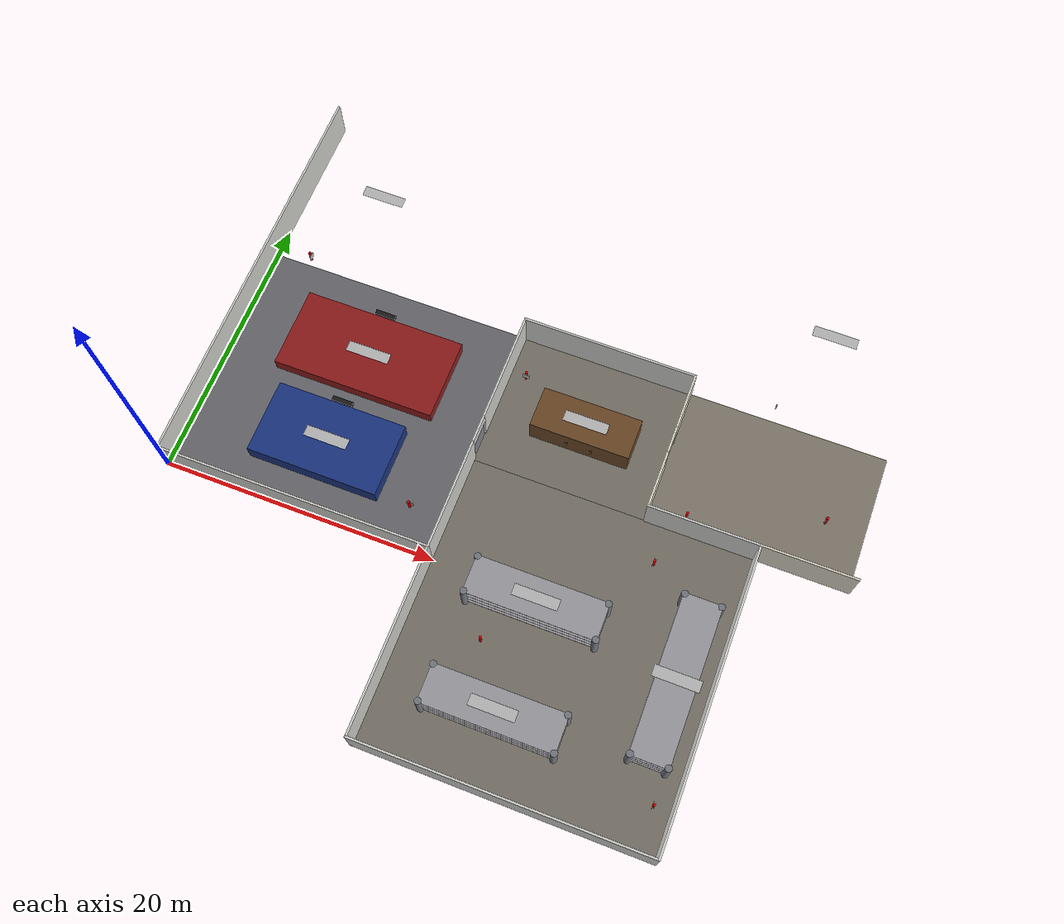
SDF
<sdf version="1.6">
 <world name="warehouse_world">
  <model name="wall_warehouse_west">
   <static>true</static>
   <pose>0.0000 15.0000 1.5000 0.0000 0.0000 0.0000</pose>
   <link name="link">
    <inertial>
     <mass>50.0</mass>
     <inertia><ixx>0.1</ixx><ixy>0</ixy><ixz>0</ixz><iyy>0.1</iyy><iyz>0</iyz><izz>0.1</izz></inertia>
    </inertial>
    <collision name="collision">
     <geometry><box><size>0.1500 30.1500 3.0000</size></box></geometry>
     <surface><friction><ode><mu>0.8</mu><mu2>0.8</mu2></ode></friction></surface>
    </collision>
    <visual name="visual">
     <geometry><box><size>0.1500 30.1500 3.0000</size></box></geometry>
     <material>
      <ambient>0.820 0.820 0.800 1.00</ambient>
      <diffuse>0.820 0.820 0.800 1.00</diffuse>
      <specular>0.15 0.15 0.15 1</specular>
      <emissive>0 0 0 1</emissive>
     </material>
    </visual>
   </link>
  </model>
  <model name="wall_upper_storage_shared">
   <static>true</static>
   <pose>26.1000 18.0000 1.5000 0.0000 0.0000 0.0000</pose>
   <link name="link">
    <inertial>
     <mass>50.0</mass>
     <inertia><ixx>0.1</ixx><ixy>0</ixy><ixz>0</ixz><iyy>0.1</iyy><iyz>0</iyz><izz>0.1</izz></inertia>
    </inertial>
    <collision name="collision">
     <geometry><box><size>12.7500 0.1500 3.0000</size></box></geometry>
     <surface><friction><ode><mu>0.8</mu><mu2>0.8</mu2></ode></friction></surface>
    </collision>
    <visual name="visual">
     <geometry><box><size>12.7500 0.1500 3.0000</size></box></geometry>
     <material>
      <ambient>0.820 0.820 0.800 1.00</ambient>
      <diffuse>0.820 0.820 0.800 1.00</diffuse>
      <specular>0.15 0.15 0.15 1</specular>
      <emissive>0 0 0 1</emissive>
     </material>
    </visual>
   </link>
  </model>
  <model name="wall_storage_west_exterior">
   <static>true</static>
   <pose>19.8000 -6.6000 1.5000 0.0000 0.0000 0.0000</pose>
   <link name="link">
    <inertial>
     <mass>50.0</mass>
     <inertia><ixx>0.1</ixx><ixy>0</ixy><ixz>0</ixz><iyy>0.1</iyy><iyz>0</iyz><izz>0.1</izz></inertia>
    </inertial>
    <collision name="collision">
     <geometry><box><size>0.1500 13.3500 3.0000</size></box></geometry>
     <surface><friction><ode><mu>0.8</mu><mu2>0.8</mu2></ode></friction></surface>
    </collision>
    <visual name="visual">
     <geometry><box><size>0.1500 13.3500 3.0000</size></box></geometry>
     <material>
      <ambient>0.820 0.820 0.800 1.00</ambient>
      <diffuse>0.820 0.820 0.800 1.00</diffuse>
      <specular>0.15 0.15 0.15 1</specular>
      <emissive>0 0 0 1</emissive>
     </material>
    </visual>
   </link>
  </model>
  <model name="wall_warehouse_south">
   <static>true</static>
   <pose>9.9000 0.0000 1.5000 0.0000 0.0000 0.0000</pose>
   <link name="link">
    <inertial>
     <mass>50.0</mass>
     <inertia><ixx>0.1</ixx><ixy>0</ixy><ixz>0</ixz><iyy>0.1</iyy><iyz>0</iyz><izz>0.1</izz></inertia>
    </inertial>
    <collision name="collision">
     <geometry><box><size>19.9500 0.1500 3.0000</size></box></geometry>
     <surface><friction><ode><mu>0.8</mu><mu2>0.8</mu2></ode></friction></surface>
    </collision>
    <visual name="visual">
     <geometry><box><size>19.9500 0.1500 3.0000</size></box></geometry>
     <material>
      <ambient>0.820 0.820 0.800 1.00</ambient>
      <diffuse>0.820 0.820 0.800 1.00</diffuse>
      <specular>0.15 0.15 0.15 1</specular>
      <emissive>0 0 0 1</emissive>
     </material>
    </visual>
   </link>
  </model>
  <model name="wall_office_storage_shared_south">
   <static>true</static>
   <pose>36.3000 7.8000 1.5000 0.0000 0.0000 0.0000</pose>
   <link name="link">
    <inertial>
     <mass>50.0</mass>
     <inertia><ixx>0.1</ixx><ixy>0</ixy><ixz>0</ixz><iyy>0.1</iyy><iyz>0</iyz><izz>0.1</izz></inertia>
    </inertial>
    <collision name="collision">
     <geometry><box><size>7.9500 0.1500 3.0000</size></box></geometry>
     <surface><friction><ode><mu>0.8</mu><mu2>0.8</mu2></ode></friction></surface>
    </collision>
    <visual name="visual">
     <geometry><box><size>7.9500 0.1500 3.0000</size></box></geometry>
     <material>
      <ambient>0.820 0.820 0.800 1.00</ambient>
      <diffuse>0.820 0.820 0.800 1.00</diffuse>
      <specular>0.15 0.15 0.15 1</specular>
      <emissive>0 0 0 1</emissive>
     </material>
    </visual>
   </link>
  </model>
  <model name="wall_office_south_exterior">
   <static>true</static>
   <pose>43.5000 7.8000 1.5000 0.0000 0.0000 0.0000</pose>
   <link name="link">
    <inertial>
     <mass>50.0</mass>
     <inertia><ixx>0.1</ixx><ixy>0</ixy><ixz>0</ixz><iyy>0.1</iyy><iyz>0</iyz><izz>0.1</izz></inertia>
    </inertial>
    <collision name="collision">
     <geometry><box><size>6.7500 0.1500 3.0000</size></box></geometry>
     <surface><friction><ode><mu>0.8</mu><mu2>0.8</mu2></ode></friction></surface>
    </collision>
    <visual name="visual">
     <geometry><box><size>6.7500 0.1500 3.0000</size></box></geometry>
     <material>
      <ambient>0.860 0.840 0.780 1.00</ambient>
      <diffuse>0.860 0.840 0.780 1.00</diffuse>
      <specular>0.15 0.15 0.15 1</specular>
      <emissive>0 0 0 1</emissive>
     </material>
    </visual>
   </link>
  </model>
  <model name="wall_storage_east_exterior">
   <static>true</static>
   <pose>40.2000 -2.7000 1.5000 0.0000 0.0000 0.0000</pose>
   <link name="link">
    <inertial>
     <mass>50.0</mass>
     <inertia><ixx>0.1</ixx><ixy>0</ixy><ixz>0</ixz><iyy>0.1</iyy><iyz>0</iyz><izz>0.1</izz></inertia>
    </inertial>
    <collision name="collision">
     <geometry><box><size>0.1500 21.1500 3.0000</size></box></geometry>
     <surface><friction><ode><mu>0.8</mu><mu2>0.8</mu2></ode></friction></surface>
    </collision>
    <visual name="visual">
     <geometry><box><size>0.1500 21.1500 3.0000</size></box></geometry>
     <material>
      <ambient>0.820 0.820 0.800 1.00</ambient>
      <diffuse>0.820 0.820 0.800 1.00</diffuse>
      <specular>0.15 0.15 0.15 1</specular>
      <emissive>0 0 0 1</emissive>
     </material>
    </visual>
   </link>
  </model>
  <model name="wall_storage_south_exterior">
   <static>true</static>
   <pose>30.0000 -13.2000 1.5000 0.0000 0.0000 0.0000</pose>
   <link name="link">
    <inertial>
     <mass>50.0</mass>
     <inertia><ixx>0.1</ixx><ixy>0</ixy><ixz>0</ixz><iyy>0.1</iyy><iyz>0</iyz><izz>0.1</izz></inertia>
    </inertial>
    <collision name="collision">
     <geometry><box><size>20.5500 0.1500 3.0000</size></box></geometry>
     <surface><friction><ode><mu>0.8</mu><mu2>0.8</mu2></ode></friction></surface>
    </collision>
    <visual name="visual">
     <geometry><box><size>20.5500 0.1500 3.0000</size></box></geometry>
     <material>
      <ambient>0.820 0.820 0.800 1.00</ambient>
      <diffuse>0.820 0.820 0.800 1.00</diffuse>
      <specular>0.15 0.15 0.15 1</specular>
      <emissive>0 0 0 1</emissive>
     </material>
    </visual>
   </link>
  </model>
  <model name="door_warehouse_storage_jamb_a">
   <static>true</static>
   <pose>19.8000 3.9625 1.5000 0.0000 0.0000 0.0000</pose>
   <link name="link">
    <inertial>
     <mass>50.0</mass>
     <inertia><ixx>0.1</ixx><ixy>0</ixy><ixz>0</ixz><iyy>0.1</iyy><iyz>0</iyz><izz>0.1</izz></inertia>
    </inertial>
    <collision name="collision">
     <geometry><box><size>0.1500 8.0750 3.0000</size></box></geometry>
     <surface><friction><ode><mu>0.8</mu><mu2>0.8</mu2></ode></friction></surface>
    </collision>
    <visual name="visual">
     <geometry><box><size>0.1500 8.0750 3.0000</size></box></geometry>
     <material>
      <ambient>0.820 0.820 0.800 1.00</ambient>
      <diffuse>0.820 0.820 0.800 1.00</diffuse>
      <specular>0.15 0.15 0.15 1</specular>
      <emissive>0 0 0 1</emissive>
     </material>
    </visual>
   </link>
  </model>
  <model name="door_warehouse_storage_jamb_b">
   <static>true</static>
   <pose>19.8000 14.0375 1.5000 0.0000 0.0000 0.0000</pose>
   <link name="link">
    <inertial>
     <mass>50.0</mass>
     <inertia><ixx>0.1</ixx><ixy>0</ixy><ixz>0</ixz><iyy>0.1</iyy><iyz>0</iyz><izz>0.1</izz></inertia>
    </inertial>
    <collision name="collision">
     <geometry><box><size>0.1500 8.0750 3.0000</size></box></geometry>
     <surface><friction><ode><mu>0.8</mu><mu2>0.8</mu2></ode></friction></surface>
    </collision>
    <visual name="visual">
     <geometry><box><size>0.1500 8.0750 3.0000</size></box></geometry>
     <material>
      <ambient>0.820 0.820 0.800 1.00</ambient>
      <diffuse>0.820 0.820 0.800 1.00</diffuse>
      <specular>0.15 0.15 0.15 1</specular>
      <emissive>0 0 0 1</emissive>
     </material>
    </visual>
   </link>
  </model>
  <model name="door_warehouse_storage_header">
   <static>true</static>
   <pose>19.8000 9.0000 2.5500 0.0000 0.0000 0.0000</pose>
   <link name="link">
    <inertial>
     <mass>10.0</mass>
     <inertia><ixx>0.1</ixx><ixy>0</ixy><ixz>0</ixz><iyy>0.1</iyy><iyz>0</iyz><izz>0.1</izz></inertia>
    </inertial>
    <collision name="collision">
     <geometry><box><size>0.1500 2.0000 0.9000</size></box></geometry>
     <surface><friction><ode><mu>0.8</mu><mu2>0.8</mu2></ode></friction></surface>
    </collision>
    <visual name="visual">
     <geometry><box><size>0.1500 2.0000 0.9000</size></box></geometry>
     <material>
      <ambient>0.820 0.820 0.800 1.00</ambient>
      <diffuse>0.820 0.820 0.800 1.00</diffuse>
      <specular>0.15 0.15 0.15 1</specular>
      <emissive>0 0 0 1</emissive>
     </material>
    </visual>
   </link>
  </model>
  <model name="door_office_storage_jamb_a">
   <static>true</static>
   <pose>32.4000 9.8125 1.5000 0.0000 0.0000 0.0000</pose>
   <link name="link">
    <inertial>
     <mass>50.0</mass>
     <inertia><ixx>0.1</ixx><ixy>0</ixy><ixz>0</ixz><iyy>0.1</iyy><iyz>0</iyz><izz>0.1</izz></inertia>
    </inertial>
    <collision name="collision">
     <geometry><box><size>0.1500 4.1750 3.0000</size></box></geometry>
     <surface><friction><ode><mu>0.8</mu><mu2>0.8</mu2></ode></friction></surface>
    </collision>
    <visual name="visual">
     <geometry><box><size>0.1500 4.1750 3.0000</size></box></geometry>
     <material>
      <ambient>0.860 0.840 0.780 1.00</ambient>
      <diffuse>0.860 0.840 0.780 1.00</diffuse>
      <specular>0.15 0.15 0.15 1</specular>
      <emissive>0 0 0 1</emissive>
     </material>
    </visual>
   </link>
  </model>
  <model name="door_office_storage_jamb_b">
   <static>true</static>
   <pose>32.4000 15.9875 1.5000 0.0000 0.0000 0.0000</pose>
   <link name="link">
    <inertial>
     <mass>50.0</mass>
     <inertia><ixx>0.1</ixx><ixy>0</ixy><ixz>0</ixz><iyy>0.1</iyy><iyz>0</iyz><izz>0.1</izz></inertia>
    </inertial>
    <collision name="collision">
     <geometry><box><size>0.1500 4.1750 3.0000</size></box></geometry>
     <surface><friction><ode><mu>0.8</mu><mu2>0.8</mu2></ode></friction></surface>
    </collision>
    <visual name="visual">
     <geometry><box><size>0.1500 4.1750 3.0000</size></box></geometry>
     <material>
      <ambient>0.860 0.840 0.780 1.00</ambient>
      <diffuse>0.860 0.840 0.780 1.00</diffuse>
      <specular>0.15 0.15 0.15 1</specular>
      <emissive>0 0 0 1</emissive>
     </material>
    </visual>
   </link>
  </model>
  <model name="door_office_storage_header">
   <static>true</static>
   <pose>32.4000 12.9000 2.5500 0.0000 0.0000 0.0000</pose>
   <link name="link">
    <inertial>
     <mass>10.0</mass>
     <inertia><ixx>0.1</ixx><ixy>0</ixy><ixz>0</ixz><iyy>0.1</iyy><iyz>0</iyz><izz>0.1</izz></inertia>
    </inertial>
    <collision name="collision">
     <geometry><box><size>0.1500 2.0000 0.9000</size></box></geometry>
     <surface><friction><ode><mu>0.8</mu><mu2>0.8</mu2></ode></friction></surface>
    </collision>
    <visual name="visual">
     <geometry><box><size>0.1500 2.0000 0.9000</size></box></geometry>
     <material>
      <ambient>0.860 0.840 0.780 1.00</ambient>
      <diffuse>0.860 0.840 0.780 1.00</diffuse>
      <specular>0.15 0.15 0.15 1</specular>
      <emissive>0 0 0 1</emissive>
     </material>
    </visual>
   </link>
  </model>
  <model name="floor_warehouse_lower">
   <static>true</static>
   <pose>9.9000 9.0000 -0.0500 0.0000 0.0000 0.0000</pose>
   <link name="link">
    <inertial>
     <mass>100.0</mass>
     <inertia><ixx>0.1</ixx><ixy>0</ixy><ixz>0</ixz><iyy>0.1</iyy><iyz>0</iyz><izz>0.1</izz></inertia>
    </inertial>
    <collision name="collision">
     <geometry><box><size>19.8000 18.0000 0.1000</size></box></geometry>
     <surface><friction><ode><mu>0.8</mu><mu2>0.8</mu2></ode></friction></surface>
    </collision>
    <visual name="visual">
     <geometry><box><size>19.8000 18.0000 0.1000</size></box></geometry>
     <material>
      <ambient>0.400 0.400 0.420 1.00</ambient>
      <diffuse>0.400 0.400 0.420 1.00</diffuse>
      <specular>0.15 0.15 0.15 1</specular>
      <emissive>0 0 0 1</emissive>
     </material>
    </visual>
   </link>
  </model>
  <model name="floor_storage_upper">
   <static>true</static>
   <pose>26.1000 12.9000 -0.0500 0.0000 0.0000 0.0000</pose>
   <link name="link">
    <inertial>
     <mass>100.0</mass>
     <inertia><ixx>0.1</ixx><ixy>0</ixy><ixz>0</ixz><iyy>0.1</iyy><iyz>0</iyz><izz>0.1</izz></inertia>
    </inertial>
    <collision name="collision">
     <geometry><box><size>12.6000 10.2000 0.1000</size></box></geometry>
     <surface><friction><ode><mu>0.8</mu><mu2>0.8</mu2></ode></friction></surface>
    </collision>
    <visual name="visual">
     <geometry><box><size>12.6000 10.2000 0.1000</size></box></geometry>
     <material>
      <ambient>0.460 0.440 0.400 1.00</ambient>
      <diffuse>0.460 0.440 0.400 1.00</diffuse>
      <specular>0.15 0.15 0.15 1</specular>
      <emissive>0 0 0 1</emissive>
     </material>
    </visual>
   </link>
  </model>
  <model name="floor_storage_lower">
   <static>true</static>
   <pose>30.0000 -2.7000 -0.0500 0.0000 0.0000 0.0000</pose>
   <link name="link">
    <inertial>
     <mass>100.0</mass>
     <inertia><ixx>0.1</ixx><ixy>0</ixy><ixz>0</ixz><iyy>0.1</iyy><iyz>0</iyz><izz>0.1</izz></inertia>
    </inertial>
    <collision name="collision">
     <geometry><box><size>20.4000 21.0000 0.1000</size></box></geometry>
     <surface><friction><ode><mu>0.8</mu><mu2>0.8</mu2></ode></friction></surface>
    </collision>
    <visual name="visual">
     <geometry><box><size>20.4000 21.0000 0.1000</size></box></geometry>
     <material>
      <ambient>0.460 0.440 0.400 1.00</ambient>
      <diffuse>0.460 0.440 0.400 1.00</diffuse>
      <specular>0.15 0.15 0.15 1</specular>
      <emissive>0 0 0 1</emissive>
     </material>
    </visual>
   </link>
  </model>
  <model name="floor_office_lower">
   <static>true</static>
   <pose>39.6000 12.9000 -0.0500 0.0000 0.0000 0.0000</pose>
   <link name="link">
    <inertial>
     <mass>100.0</mass>
     <inertia><ixx>0.1</ixx><ixy>0</ixy><ixz>0</ixz><iyy>0.1</iyy><iyz>0</iyz><izz>0.1</izz></inertia>
    </inertial>
    <collision name="collision">
     <geometry><box><size>14.4000 10.2000 0.1000</size></box></geometry>
     <surface><friction><ode><mu>0.8</mu><mu2>0.8</mu2></ode></friction></surface>
    </collision>
    <visual name="visual">
     <geometry><box><size>14.4000 10.2000 0.1000</size></box></geometry>
     <material>
      <ambient>0.500 0.470 0.420 1.00</ambient>
      <diffuse>0.500 0.470 0.420 1.00</diffuse>
      <specular>0.15 0.15 0.15 1</specular>
      <emissive>0 0 0 1</emissive>
     </material>
    </visual>
   </link>
  </model>
  <model name="machine_1">
   <static>true</static>
   <pose>9.9000 12.4500 0.5000 0.0000 0.0000 0.0000</pose>
   <link name="link">
    <inertial>
     <mass>250.0</mass>
     <inertia><ixx>0.1</ixx><ixy>0</ixy><ixz>0</ixz><iyy>0.1</iyy><iyz>0</iyz><izz>0.1</izz></inertia>
    </inertial>
    <collision name="collision">
     <geometry><box><size>12.0000 6.0000 1.0000</size></box></geometry>
     <surface><friction><ode><mu>0.8</mu><mu2>0.8</mu2></ode></friction></surface>
    </collision>
    <visual name="visual">
     <geometry><box><size>12.0000 6.0000 1.0000</size></box></geometry>
     <material>
      <ambient>0.550 0.100 0.100 1.00</ambient>
      <diffuse>0.550 0.100 0.100 1.00</diffuse>
      <specular>0.15 0.15 0.15 1</specular>
      <emissive>0 0 0 1</emissive>
     </material>
    </visual>
   </link>
  </model>
  <model name="machine_1_panel">
   <static>true</static>
   <pose>9.9000 15.6000 1.1500 0.0000 0.0000 0.0000</pose>
   <link name="link">
    <inertial>
     <mass>2.0</mass>
     <inertia><ixx>0.1</ixx><ixy>0</ixy><ixz>0</ixz><iyy>0.1</iyy><iyz>0</iyz><izz>0.1</izz></inertia>
    </inertial>
    <collision name="collision">
     <geometry><box><size>1.5000 0.3000 0.3000</size></box></geometry>
     <surface><friction><ode><mu>0.8</mu><mu2>0.8</mu2></ode></friction></surface>
    </collision>
    <visual name="visual">
     <geometry><box><size>1.5000 0.3000 0.3000</size></box></geometry>
     <material>
      <ambient>0.100 0.100 0.100 1.00</ambient>
      <diffuse>0.100 0.100 0.100 1.00</diffuse>
      <specular>0.15 0.15 0.15 1</specular>
      <emissive>0 0 0 1</emissive>
     </material>
    </visual>
   </link>
  </model>
  <model name="machine_2">
   <static>true</static>
   <pose>9.9000 5.2500 0.6500 0.0000 0.0000 0.0000</pose>
   <link name="link">
    <inertial>
     <mass>300.0</mass>
     <inertia><ixx>0.1</ixx><ixy>0</ixy><ixz>0</ixz><iyy>0.1</iyy><iyz>0</iyz><izz>0.1</izz></inertia>
    </inertial>
    <collision name="collision">
     <geometry><box><size>9.6000 5.4000 1.3000</size></box></geometry>
     <surface><friction><ode><mu>0.8</mu><mu2>0.8</mu2></ode></friction></surface>
    </collision>
    <visual name="visual">
     <geometry><box><size>9.6000 5.4000 1.3000</size></box></geometry>
     <material>
      <ambient>0.100 0.200 0.500 1.00</ambient>
      <diffuse>0.100 0.200 0.500 1.00</diffuse>
      <specular>0.15 0.15 0.15 1</specular>
      <emissive>0 0 0 1</emissive>
     </material>
    </visual>
   </link>
  </model>
  <model name="machine_2_panel">
   <static>true</static>
   <pose>9.9000 8.1000 1.4500 0.0000 0.0000 0.0000</pose>
   <link name="link">
    <inertial>
     <mass>2.0</mass>
     <inertia><ixx>0.1</ixx><ixy>0</ixy><ixz>0</ixz><iyy>0.1</iyy><iyz>0</iyz><izz>0.1</izz></inertia>
    </inertial>
    <collision name="collision">
     <geometry><box><size>1.5000 0.3000 0.3000</size></box></geometry>
     <surface><friction><ode><mu>0.8</mu><mu2>0.8</mu2></ode></friction></surface>
    </collision>
    <visual name="visual">
     <geometry><box><size>1.5000 0.3000 0.3000</size></box></geometry>
     <material>
      <ambient>0.100 0.100 0.100 1.00</ambient>
      <diffuse>0.100 0.100 0.100 1.00</diffuse>
      <specular>0.15 0.15 0.15 1</specular>
      <emissive>0 0 0 1</emissive>
     </material>
    </visual>
   </link>
  </model>
  <model name="cupboard">
   <static>true</static>
   <pose>26.4000 12.4000 1.0000 0.0000 0.0000 0.0000</pose>
   <link name="link">
    <inertial>
     <mass>60.0</mass>
     <inertia><ixx>0.1</ixx><ixy>0</ixy><ixz>0</ixz><iyy>0.1</iyy><iyz>0</iyz><izz>0.1</izz></inertia>
    </inertial>
    <collision name="collision">
     <geometry><box><size>7.2000 3.0000 2.0000</size></box></geometry>
     <surface><friction><ode><mu>0.8</mu><mu2>0.8</mu2></ode></friction></surface>
    </collision>
    <visual name="visual">
     <geometry><box><size>7.2000 3.0000 2.0000</size></box></geometry>
     <material>
      <ambient>0.420 0.280 0.150 1.00</ambient>
      <diffuse>0.420 0.280 0.150 1.00</diffuse>
      <specular>0.15 0.15 0.15 1</specular>
      <emissive>0 0 0 1</emissive>
     </material>
    </visual>
   </link>
  </model>
  <model name="cupboard_handle_1">
   <static>true</static>
   <pose>25.5000 10.8100 1.0000 0.0000 0.0000 0.0000</pose>
   <link name="link">
    <inertial>
     <mass>0.2</mass>
     <inertia><ixx>0.1</ixx><ixy>0</ixy><ixz>0</ixz><iyy>0.1</iyy><iyz>0</iyz><izz>0.1</izz></inertia>
    </inertial>
    <collision name="collision">
     <geometry><box><size>0.1800 0.1800 0.1500</size></box></geometry>
     <surface><friction><ode><mu>0.8</mu><mu2>0.8</mu2></ode></friction></surface>
    </collision>
    <visual name="visual">
     <geometry><box><size>0.1800 0.1800 0.1500</size></box></geometry>
     <material>
      <ambient>0.200 0.130 0.070 1.00</ambient>
      <diffuse>0.200 0.130 0.070 1.00</diffuse>
      <specular>0.15 0.15 0.15 1</specular>
      <emissive>0 0 0 1</emissive>
     </material>
    </visual>
   </link>
  </model>
  <model name="cupboard_handle_2">
   <static>true</static>
   <pose>27.3000 10.8100 1.0000 0.0000 0.0000 0.0000</pose>
   <link name="link">
    <inertial>
     <mass>0.2</mass>
     <inertia><ixx>0.1</ixx><ixy>0</ixy><ixz>0</ixz><iyy>0.1</iyy><iyz>0</iyz><izz>0.1</izz></inertia>
    </inertial>
    <collision name="collision">
     <geometry><box><size>0.1800 0.1800 0.1500</size></box></geometry>
     <surface><friction><ode><mu>0.8</mu><mu2>0.8</mu2></ode></friction></surface>
    </collision>
    <visual name="visual">
     <geometry><box><size>0.1800 0.1800 0.1500</size></box></geometry>
     <material>
      <ambient>0.200 0.130 0.070 1.00</ambient>
      <diffuse>0.200 0.130 0.070 1.00</diffuse>
      <specular>0.15 0.15 0.15 1</specular>
      <emissive>0 0 0 1</emissive>
     </material>
    </visual>
   </link>
  </model>
  <model name="rack_storage_1_post1">
   <static>true</static>
   <pose>32.1600 0.6600 1.2500 0.0000 0.0000 0.0000</pose>
   <link name="link">
    <inertial>
     <mass>4.0</mass>
     <inertia><ixx>0.01</ixx><ixy>0</ixy><ixz>0</ixz><iyy>0.01</iyy><iyz>0</iyz><izz>0.01</izz></inertia>
    </inertial>
    <collision name="collision">
     <geometry><cylinder><radius>0.2400</radius><length>2.5000</length></cylinder></geometry>
    </collision>
    <visual name="visual">
     <geometry><cylinder><radius>0.2400</radius><length>2.5000</length></cylinder></geometry>
     <material>
      <ambient>0.450 0.470 0.500 1.00</ambient>
      <diffuse>0.450 0.470 0.500 1.00</diffuse>
      <specular>0.2 0.2 0.2 1</specular>
      <emissive>0 0 0 1</emissive>
     </material>
    </visual>
   </link>
  </model>
  <model name="rack_storage_1_post2">
   <static>true</static>
   <pose>32.1600 -1.8600 1.2500 0.0000 0.0000 0.0000</pose>
   <link name="link">
    <inertial>
     <mass>4.0</mass>
     <inertia><ixx>0.01</ixx><ixy>0</ixy><ixz>0</ixz><iyy>0.01</iyy><iyz>0</iyz><izz>0.01</izz></inertia>
    </inertial>
    <collision name="collision">
     <geometry><cylinder><radius>0.2400</radius><length>2.5000</length></cylinder></geometry>
    </collision>
    <visual name="visual">
     <geometry><cylinder><radius>0.2400</radius><length>2.5000</length></cylinder></geometry>
     <material>
      <ambient>0.450 0.470 0.500 1.00</ambient>
      <diffuse>0.450 0.470 0.500 1.00</diffuse>
      <specular>0.2 0.2 0.2 1</specular>
      <emissive>0 0 0 1</emissive>
     </material>
    </visual>
   </link>
  </model>
  <model name="rack_storage_1_post3">
   <static>true</static>
   <pose>23.0400 0.6600 1.2500 0.0000 0.0000 0.0000</pose>
   <link name="link">
    <inertial>
     <mass>4.0</mass>
     <inertia><ixx>0.01</ixx><ixy>0</ixy><ixz>0</ixz><iyy>0.01</iyy><iyz>0</iyz><izz>0.01</izz></inertia>
    </inertial>
    <collision name="collision">
     <geometry><cylinder><radius>0.2400</radius><length>2.5000</length></cylinder></geometry>
    </collision>
    <visual name="visual">
     <geometry><cylinder><radius>0.2400</radius><length>2.5000</length></cylinder></geometry>
     <material>
      <ambient>0.450 0.470 0.500 1.00</ambient>
      <diffuse>0.450 0.470 0.500 1.00</diffuse>
      <specular>0.2 0.2 0.2 1</specular>
      <emissive>0 0 0 1</emissive>
     </material>
    </visual>
   </link>
  </model>
  <model name="rack_storage_1_post4">
   <static>true</static>
   <pose>23.0400 -1.8600 1.2500 0.0000 0.0000 0.0000</pose>
   <link name="link">
    <inertial>
     <mass>4.0</mass>
     <inertia><ixx>0.01</ixx><ixy>0</ixy><ixz>0</ixz><iyy>0.01</iyy><iyz>0</iyz><izz>0.01</izz></inertia>
    </inertial>
    <collision name="collision">
     <geometry><cylinder><radius>0.2400</radius><length>2.5000</length></cylinder></geometry>
    </collision>
    <visual name="visual">
     <geometry><cylinder><radius>0.2400</radius><length>2.5000</length></cylinder></geometry>
     <material>
      <ambient>0.450 0.470 0.500 1.00</ambient>
      <diffuse>0.450 0.470 0.500 1.00</diffuse>
      <specular>0.2 0.2 0.2 1</specular>
      <emissive>0 0 0 1</emissive>
     </material>
    </visual>
   </link>
  </model>
  <model name="rack_storage_1_shelf1">
   <static>true</static>
   <pose>27.6000 -0.6000 0.5950 0.0000 0.0000 0.0000</pose>
   <link name="link">
    <inertial>
     <mass>6.0</mass>
     <inertia><ixx>0.1</ixx><ixy>0</ixy><ixz>0</ixz><iyy>0.1</iyy><iyz>0</iyz><izz>0.1</izz></inertia>
    </inertial>
    <collision name="collision">
     <geometry><box><size>9.3000 2.7000 0.0300</size></box></geometry>
     <surface><friction><ode><mu>0.8</mu><mu2>0.8</mu2></ode></friction></surface>
    </collision>
    <visual name="visual">
     <geometry><box><size>9.3000 2.7000 0.0300</size></box></geometry>
     <material>
      <ambient>0.600 0.600 0.620 1.00</ambient>
      <diffuse>0.600 0.600 0.620 1.00</diffuse>
      <specular>0.15 0.15 0.15 1</specular>
      <emissive>0 0 0 1</emissive>
     </material>
    </visual>
   </link>
  </model>
  <model name="rack_storage_1_shelf2">
   <static>true</static>
   <pose>27.6000 -0.6000 1.2200 0.0000 0.0000 0.0000</pose>
   <link name="link">
    <inertial>
     <mass>6.0</mass>
     <inertia><ixx>0.1</ixx><ixy>0</ixy><ixz>0</ixz><iyy>0.1</iyy><iyz>0</iyz><izz>0.1</izz></inertia>
    </inertial>
    <collision name="collision">
     <geometry><box><size>9.3000 2.7000 0.0300</size></box></geometry>
     <surface><friction><ode><mu>0.8</mu><mu2>0.8</mu2></ode></friction></surface>
    </collision>
    <visual name="visual">
     <geometry><box><size>9.3000 2.7000 0.0300</size></box></geometry>
     <material>
      <ambient>0.600 0.600 0.620 1.00</ambient>
      <diffuse>0.600 0.600 0.620 1.00</diffuse>
      <specular>0.15 0.15 0.15 1</specular>
      <emissive>0 0 0 1</emissive>
     </material>
    </visual>
   </link>
  </model>
  <model name="rack_storage_1_shelf3">
   <static>true</static>
   <pose>27.6000 -0.6000 1.8450 0.0000 0.0000 0.0000</pose>
   <link name="link">
    <inertial>
     <mass>6.0</mass>
     <inertia><ixx>0.1</ixx><ixy>0</ixy><ixz>0</ixz><iyy>0.1</iyy><iyz>0</iyz><izz>0.1</izz></inertia>
    </inertial>
    <collision name="collision">
     <geometry><box><size>9.3000 2.7000 0.0300</size></box></geometry>
     <surface><friction><ode><mu>0.8</mu><mu2>0.8</mu2></ode></friction></surface>
    </collision>
    <visual name="visual">
     <geometry><box><size>9.3000 2.7000 0.0300</size></box></geometry>
     <material>
      <ambient>0.600 0.600 0.620 1.00</ambient>
      <diffuse>0.600 0.600 0.620 1.00</diffuse>
      <specular>0.15 0.15 0.15 1</specular>
      <emissive>0 0 0 1</emissive>
     </material>
    </visual>
   </link>
  </model>
  <model name="rack_storage_1_shelf4">
   <static>true</static>
   <pose>27.6000 -0.6000 2.4700 0.0000 0.0000 0.0000</pose>
   <link name="link">
    <inertial>
     <mass>6.0</mass>
     <inertia><ixx>0.1</ixx><ixy>0</ixy><ixz>0</ixz><iyy>0.1</iyy><iyz>0</iyz><izz>0.1</izz></inertia>
    </inertial>
    <collision name="collision">
     <geometry><box><size>9.3000 2.7000 0.0300</size></box></geometry>
     <surface><friction><ode><mu>0.8</mu><mu2>0.8</mu2></ode></friction></surface>
    </collision>
    <visual name="visual">
     <geometry><box><size>9.3000 2.7000 0.0300</size></box></geometry>
     <material>
      <ambient>0.600 0.600 0.620 1.00</ambient>
      <diffuse>0.600 0.600 0.620 1.00</diffuse>
      <specular>0.15 0.15 0.15 1</specular>
      <emissive>0 0 0 1</emissive>
     </material>
    </visual>
   </link>
  </model>
  <model name="rack_storage_2_post1">
   <static>true</static>
   <pose>32.1600 -6.9900 1.2500 0.0000 0.0000 0.0000</pose>
   <link name="link">
    <inertial>
     <mass>4.0</mass>
     <inertia><ixx>0.01</ixx><ixy>0</ixy><ixz>0</ixz><iyy>0.01</iyy><iyz>0</iyz><izz>0.01</izz></inertia>
    </inertial>
    <collision name="collision">
     <geometry><cylinder><radius>0.2400</radius><length>2.5000</length></cylinder></geometry>
    </collision>
    <visual name="visual">
     <geometry><cylinder><radius>0.2400</radius><length>2.5000</length></cylinder></geometry>
     <material>
      <ambient>0.450 0.470 0.500 1.00</ambient>
      <diffuse>0.450 0.470 0.500 1.00</diffuse>
      <specular>0.2 0.2 0.2 1</specular>
      <emissive>0 0 0 1</emissive>
     </material>
    </visual>
   </link>
  </model>
  <model name="rack_storage_2_post2">
   <static>true</static>
   <pose>32.1600 -9.5100 1.2500 0.0000 0.0000 0.0000</pose>
   <link name="link">
    <inertial>
     <mass>4.0</mass>
     <inertia><ixx>0.01</ixx><ixy>0</ixy><ixz>0</ixz><iyy>0.01</iyy><iyz>0</iyz><izz>0.01</izz></inertia>
    </inertial>
    <collision name="collision">
     <geometry><cylinder><radius>0.2400</radius><length>2.5000</length></cylinder></geometry>
    </collision>
    <visual name="visual">
     <geometry><cylinder><radius>0.2400</radius><length>2.5000</length></cylinder></geometry>
     <material>
      <ambient>0.450 0.470 0.500 1.00</ambient>
      <diffuse>0.450 0.470 0.500 1.00</diffuse>
      <specular>0.2 0.2 0.2 1</specular>
      <emissive>0 0 0 1</emissive>
     </material>
    </visual>
   </link>
  </model>
  <model name="rack_storage_2_post3">
   <static>true</static>
   <pose>23.0400 -6.9900 1.2500 0.0000 0.0000 0.0000</pose>
   <link name="link">
    <inertial>
     <mass>4.0</mass>
     <inertia><ixx>0.01</ixx><ixy>0</ixy><ixz>0</ixz><iyy>0.01</iyy><iyz>0</iyz><izz>0.01</izz></inertia>
    </inertial>
    <collision name="collision">
     <geometry><cylinder><radius>0.2400</radius><length>2.5000</length></cylinder></geometry>
    </collision>
    <visual name="visual">
     <geometry><cylinder><radius>0.2400</radius><length>2.5000</length></cylinder></geometry>
     <material>
      <ambient>0.450 0.470 0.500 1.00</ambient>
      <diffuse>0.450 0.470 0.500 1.00</diffuse>
      <specular>0.2 0.2 0.2 1</specular>
      <emissive>0 0 0 1</emissive>
     </material>
    </visual>
   </link>
  </model>
  <model name="rack_storage_2_post4">
   <static>true</static>
   <pose>23.0400 -9.5100 1.2500 0.0000 0.0000 0.0000</pose>
   <link name="link">
    <inertial>
     <mass>4.0</mass>
     <inertia><ixx>0.01</ixx><ixy>0</ixy><ixz>0</ixz><iyy>0.01</iyy><iyz>0</iyz><izz>0.01</izz></inertia>
    </inertial>
    <collision name="collision">
     <geometry><cylinder><radius>0.2400</radius><length>2.5000</length></cylinder></geometry>
    </collision>
    <visual name="visual">
     <geometry><cylinder><radius>0.2400</radius><length>2.5000</length></cylinder></geometry>
     <material>
      <ambient>0.450 0.470 0.500 1.00</ambient>
      <diffuse>0.450 0.470 0.500 1.00</diffuse>
      <specular>0.2 0.2 0.2 1</specular>
      <emissive>0 0 0 1</emissive>
     </material>
    </visual>
   </link>
  </model>
  <model name="rack_storage_2_shelf1">
   <static>true</static>
   <pose>27.6000 -8.2500 0.5950 0.0000 0.0000 0.0000</pose>
   <link name="link">
    <inertial>
     <mass>6.0</mass>
     <inertia><ixx>0.1</ixx><ixy>0</ixy><ixz>0</ixz><iyy>0.1</iyy><iyz>0</iyz><izz>0.1</izz></inertia>
    </inertial>
    <collision name="collision">
     <geometry><box><size>9.3000 2.7000 0.0300</size></box></geometry>
     <surface><friction><ode><mu>0.8</mu><mu2>0.8</mu2></ode></friction></surface>
    </collision>
    <visual name="visual">
     <geometry><box><size>9.3000 2.7000 0.0300</size></box></geometry>
     <material>
      <ambient>0.600 0.600 0.620 1.00</ambient>
      <diffuse>0.600 0.600 0.620 1.00</diffuse>
      <specular>0.15 0.15 0.15 1</specular>
      <emissive>0 0 0 1</emissive>
     </material>
    </visual>
   </link>
  </model>
  <model name="rack_storage_2_shelf2">
   <static>true</static>
   <pose>27.6000 -8.2500 1.2200 0.0000 0.0000 0.0000</pose>
   <link name="link">
    <inertial>
     <mass>6.0</mass>
     <inertia><ixx>0.1</ixx><ixy>0</ixy><ixz>0</ixz><iyy>0.1</iyy><iyz>0</iyz><izz>0.1</izz></inertia>
    </inertial>
    <collision name="collision">
     <geometry><box><size>9.3000 2.7000 0.0300</size></box></geometry>
     <surface><friction><ode><mu>0.8</mu><mu2>0.8</mu2></ode></friction></surface>
    </collision>
    <visual name="visual">
     <geometry><box><size>9.3000 2.7000 0.0300</size></box></geometry>
     <material>
      <ambient>0.600 0.600 0.620 1.00</ambient>
      <diffuse>0.600 0.600 0.620 1.00</diffuse>
      <specular>0.15 0.15 0.15 1</specular>
      <emissive>0 0 0 1</emissive>
     </material>
    </visual>
   </link>
  </model>
  <model name="rack_storage_2_shelf3">
   <static>true</static>
   <pose>27.6000 -8.2500 1.8450 0.0000 0.0000 0.0000</pose>
   <link name="link">
    <inertial>
     <mass>6.0</mass>
     <inertia><ixx>0.1</ixx><ixy>0</ixy><ixz>0</ixz><iyy>0.1</iyy><iyz>0</iyz><izz>0.1</izz></inertia>
    </inertial>
    <collision name="collision">
     <geometry><box><size>9.3000 2.7000 0.0300</size></box></geometry>
     <surface><friction><ode><mu>0.8</mu><mu2>0.8</mu2></ode></friction></surface>
    </collision>
    <visual name="visual">
     <geometry><box><size>9.3000 2.7000 0.0300</size></box></geometry>
     <material>
      <ambient>0.600 0.600 0.620 1.00</ambient>
      <diffuse>0.600 0.600 0.620 1.00</diffuse>
      <specular>0.15 0.15 0.15 1</specular>
      <emissive>0 0 0 1</emissive>
     </material>
    </visual>
   </link>
  </model>
  <model name="rack_storage_2_shelf4">
   <static>true</static>
   <pose>27.6000 -8.2500 2.4700 0.0000 0.0000 0.0000</pose>
   <link name="link">
    <inertial>
     <mass>6.0</mass>
     <inertia><ixx>0.1</ixx><ixy>0</ixy><ixz>0</ixz><iyy>0.1</iyy><iyz>0</iyz><izz>0.1</izz></inertia>
    </inertial>
    <collision name="collision">
     <geometry><box><size>9.3000 2.7000 0.0300</size></box></geometry>
     <surface><friction><ode><mu>0.8</mu><mu2>0.8</mu2></ode></friction></surface>
    </collision>
    <visual name="visual">
     <geometry><box><size>9.3000 2.7000 0.0300</size></box></geometry>
     <material>
      <ambient>0.600 0.600 0.620 1.00</ambient>
      <diffuse>0.600 0.600 0.620 1.00</diffuse>
      <specular>0.15 0.15 0.15 1</specular>
      <emissive>0 0 0 1</emissive>
     </material>
    </visual>
   </link>
  </model>
  <model name="rack_storage_vertical_post1">
   <static>true</static>
   <pose>39.0600 3.0600 1.2500 0.0000 0.0000 0.0000</pose>
   <link name="link">
    <inertial>
     <mass>4.0</mass>
     <inertia><ixx>0.01</ixx><ixy>0</ixy><ixz>0</ixz><iyy>0.01</iyy><iyz>0</iyz><izz>0.01</izz></inertia>
    </inertial>
    <collision name="collision">
     <geometry><cylinder><radius>0.2400</radius><length>2.5000</length></cylinder></geometry>
    </collision>
    <visual name="visual">
     <geometry><cylinder><radius>0.2400</radius><length>2.5000</length></cylinder></geometry>
     <material>
      <ambient>0.450 0.470 0.500 1.00</ambient>
      <diffuse>0.450 0.470 0.500 1.00</diffuse>
      <specular>0.2 0.2 0.2 1</specular>
      <emissive>0 0 0 1</emissive>
     </material>
    </visual>
   </link>
  </model>
  <model name="rack_storage_vertical_post2">
   <static>true</static>
   <pose>39.0600 -7.8600 1.2500 0.0000 0.0000 0.0000</pose>
   <link name="link">
    <inertial>
     <mass>4.0</mass>
     <inertia><ixx>0.01</ixx><ixy>0</ixy><ixz>0</ixz><iyy>0.01</iyy><iyz>0</iyz><izz>0.01</izz></inertia>
    </inertial>
    <collision name="collision">
     <geometry><cylinder><radius>0.2400</radius><length>2.5000</length></cylinder></geometry>
    </collision>
    <visual name="visual">
     <geometry><cylinder><radius>0.2400</radius><length>2.5000</length></cylinder></geometry>
     <material>
      <ambient>0.450 0.470 0.500 1.00</ambient>
      <diffuse>0.450 0.470 0.500 1.00</diffuse>
      <specular>0.2 0.2 0.2 1</specular>
      <emissive>0 0 0 1</emissive>
     </material>
    </visual>
   </link>
  </model>
  <model name="rack_storage_vertical_post3">
   <static>true</static>
   <pose>36.5400 3.0600 1.2500 0.0000 0.0000 0.0000</pose>
   <link name="link">
    <inertial>
     <mass>4.0</mass>
     <inertia><ixx>0.01</ixx><ixy>0</ixy><ixz>0</ixz><iyy>0.01</iyy><iyz>0</iyz><izz>0.01</izz></inertia>
    </inertial>
    <collision name="collision">
     <geometry><cylinder><radius>0.2400</radius><length>2.5000</length></cylinder></geometry>
    </collision>
    <visual name="visual">
     <geometry><cylinder><radius>0.2400</radius><length>2.5000</length></cylinder></geometry>
     <material>
      <ambient>0.450 0.470 0.500 1.00</ambient>
      <diffuse>0.450 0.470 0.500 1.00</diffuse>
      <specular>0.2 0.2 0.2 1</specular>
      <emissive>0 0 0 1</emissive>
     </material>
    </visual>
   </link>
  </model>
  <model name="rack_storage_vertical_post4">
   <static>true</static>
   <pose>36.5400 -7.8600 1.2500 0.0000 0.0000 0.0000</pose>
   <link name="link">
    <inertial>
     <mass>4.0</mass>
     <inertia><ixx>0.01</ixx><ixy>0</ixy><ixz>0</ixz><iyy>0.01</iyy><iyz>0</iyz><izz>0.01</izz></inertia>
    </inertial>
    <collision name="collision">
     <geometry><cylinder><radius>0.2400</radius><length>2.5000</length></cylinder></geometry>
    </collision>
    <visual name="visual">
     <geometry><cylinder><radius>0.2400</radius><length>2.5000</length></cylinder></geometry>
     <material>
      <ambient>0.450 0.470 0.500 1.00</ambient>
      <diffuse>0.450 0.470 0.500 1.00</diffuse>
      <specular>0.2 0.2 0.2 1</specular>
      <emissive>0 0 0 1</emissive>
     </material>
    </visual>
   </link>
  </model>
  <model name="rack_storage_vertical_shelf1">
   <static>true</static>
   <pose>37.8000 -2.4000 0.5950 0.0000 0.0000 0.0000</pose>
   <link name="link">
    <inertial>
     <mass>6.0</mass>
     <inertia><ixx>0.1</ixx><ixy>0</ixy><ixz>0</ixz><iyy>0.1</iyy><iyz>0</iyz><izz>0.1</izz></inertia>
    </inertial>
    <collision name="collision">
     <geometry><box><size>2.7000 11.1000 0.0300</size></box></geometry>
     <surface><friction><ode><mu>0.8</mu><mu2>0.8</mu2></ode></friction></surface>
    </collision>
    <visual name="visual">
     <geometry><box><size>2.7000 11.1000 0.0300</size></box></geometry>
     <material>
      <ambient>0.600 0.600 0.620 1.00</ambient>
      <diffuse>0.600 0.600 0.620 1.00</diffuse>
      <specular>0.15 0.15 0.15 1</specular>
      <emissive>0 0 0 1</emissive>
     </material>
    </visual>
   </link>
  </model>
  <model name="rack_storage_vertical_shelf2">
   <static>true</static>
   <pose>37.8000 -2.4000 1.2200 0.0000 0.0000 0.0000</pose>
   <link name="link">
    <inertial>
     <mass>6.0</mass>
     <inertia><ixx>0.1</ixx><ixy>0</ixy><ixz>0</ixz><iyy>0.1</iyy><iyz>0</iyz><izz>0.1</izz></inertia>
    </inertial>
    <collision name="collision">
     <geometry><box><size>2.7000 11.1000 0.0300</size></box></geometry>
     <surface><friction><ode><mu>0.8</mu><mu2>0.8</mu2></ode></friction></surface>
    </collision>
    <visual name="visual">
     <geometry><box><size>2.7000 11.1000 0.0300</size></box></geometry>
     <material>
      <ambient>0.600 0.600 0.620 1.00</ambient>
      <diffuse>0.600 0.600 0.620 1.00</diffuse>
      <specular>0.15 0.15 0.15 1</specular>
      <emissive>0 0 0 1</emissive>
     </material>
    </visual>
   </link>
  </model>
  <model name="rack_storage_vertical_shelf3">
   <static>true</static>
   <pose>37.8000 -2.4000 1.8450 0.0000 0.0000 0.0000</pose>
   <link name="link">
    <inertial>
     <mass>6.0</mass>
     <inertia><ixx>0.1</ixx><ixy>0</ixy><ixz>0</ixz><iyy>0.1</iyy><iyz>0</iyz><izz>0.1</izz></inertia>
    </inertial>
    <collision name="collision">
     <geometry><box><size>2.7000 11.1000 0.0300</size></box></geometry>
     <surface><friction><ode><mu>0.8</mu><mu2>0.8</mu2></ode></friction></surface>
    </collision>
    <visual name="visual">
     <geometry><box><size>2.7000 11.1000 0.0300</size></box></geometry>
     <material>
      <ambient>0.600 0.600 0.620 1.00</ambient>
      <diffuse>0.600 0.600 0.620 1.00</diffuse>
      <specular>0.15 0.15 0.15 1</specular>
      <emissive>0 0 0 1</emissive>
     </material>
    </visual>
   </link>
  </model>
  <model name="rack_storage_vertical_shelf4">
   <static>true</static>
   <pose>37.8000 -2.4000 2.4700 0.0000 0.0000 0.0000</pose>
   <link name="link">
    <inertial>
     <mass>6.0</mass>
     <inertia><ixx>0.1</ixx><ixy>0</ixy><ixz>0</ixz><iyy>0.1</iyy><iyz>0</iyz><izz>0.1</izz></inertia>
    </inertial>
    <collision name="collision">
     <geometry><box><size>2.7000 11.1000 0.0300</size></box></geometry>
     <surface><friction><ode><mu>0.8</mu><mu2>0.8</mu2></ode></friction></surface>
    </collision>
    <visual name="visual">
     <geometry><box><size>2.7000 11.1000 0.0300</size></box></geometry>
     <material>
      <ambient>0.600 0.600 0.620 1.00</ambient>
      <diffuse>0.600 0.600 0.620 1.00</diffuse>
      <specular>0.15 0.15 0.15 1</specular>
      <emissive>0 0 0 1</emissive>
     </material>
    </visual>
   </link>
  </model>
  <model name="table_4_leg2">
   <static>true</static>
   <pose>38.4000 19.0500 0.3500 0.0000 0.0000 0.0000</pose>
   <link name="link">
    <inertial>
     <mass>1.0</mass>
     <inertia><ixx>0.01</ixx><ixy>0</ixy><ixz>0</ixz><iyy>0.01</iyy><iyz>0</iyz><izz>0.01</izz></inertia>
    </inertial>
    <collision name="collision">
     <geometry><cylinder><radius>0.0300</radius><length>0.7000</length></cylinder></geometry>
    </collision>
    <visual name="visual">
     <geometry><cylinder><radius>0.0300</radius><length>0.7000</length></cylinder></geometry>
     <material>
      <ambient>0.250 0.170 0.100 1.00</ambient>
      <diffuse>0.250 0.170 0.100 1.00</diffuse>
      <specular>0.2 0.2 0.2 1</specular>
      <emissive>0 0 0 1</emissive>
     </material>
    </visual>
   </link>
  </model>
  <model name="marker_stand_1">
   <static>true</static>
   <pose>2.5000 18.5000 0.5000 0.0000 0.0000 0.0000</pose>
   <link name="link">
    <collision name="collision"><geometry><box><size>0.15 0.15 1</size></box></geometry></collision>
    <visual name="visual">
     <geometry><box><size>0.15 0.15 1</size></box></geometry>
     <material><ambient>1 0 0 1</ambient><diffuse>1 0 0 1</diffuse></material>
    </visual>
   </link>
  </model>
  <model name="marker_stand_2">
   <static>true</static>
   <pose>17 3 0.5 0 0 0</pose>
   <link name="link">
    <collision name="collision"><geometry><box><size>0.15 0.15 1</size></box></geometry></collision>
    <visual name="visual">
     <geometry><box><size>0.15 0.15 1</size></box></geometry>
     <material><ambient>1 0 0 1</ambient><diffuse>1 0 0 1</diffuse></material>
    </visual>
   </link>
  </model>
  <model name="marker_stand_4">
   <static>true</static>
   <pose>21 15 0.5 0 0 0</pose>
   <link name="link">
    <collision name="collision"><geometry><box><size>0.15 0.15 1</size></box></geometry></collision>
    <visual name="visual">
     <geometry><box><size>0.15 0.15 1</size></box></geometry>
     <material><ambient>1 0 0 1</ambient><diffuse>1 0 0 1</diffuse></material>
    </visual>
   </link>
  </model>
  <model name="marker_stand_5">
   <static>true</static>
   <pose>34 5 0.5 0 0 0</pose>
   <link name="link">
    <collision name="collision"><geometry><box><size>0.15 0.15 1</size></box></geometry></collision>
    <visual name="visual">
     <geometry><box><size>0.15 0.15 1</size></box></geometry>
     <material><ambient>1 0 0 1</ambient><diffuse>1 0 0 1</diffuse></material>
    </visual>
   </link>
  </model>
  <model name="marker_stand_6">
   <static>true</static>
   <pose>39 -10 0.5 0 0 0</pose>
   <link name="link">
    <collision name="collision"><geometry><box><size>0.15 0.15 1</size></box></geometry></collision>
    <visual name="visual">
     <geometry><box><size>0.15 0.15 1</size></box></geometry>
     <material><ambient>1 0 0 1</ambient><diffuse>1 0 0 1</diffuse></material>
    </visual>
   </link>
  </model>
  <model name="marker_stand_8">
   <static>true</static>
   <pose>35 9 0.5 0 0 0</pose>
   <link name="link">
    <collision name="collision"><geometry><box><size>0.15 0.15 1</size></box></geometry></collision>
    <visual name="visual">
     <geometry><box><size>0.15 0.15 1</size></box></geometry>
     <material><ambient>1 0 0 1</ambient><diffuse>1 0 0 1</diffuse></material>
    </visual>
   </link>
  </model>
  <model name="marker_stand_10">
   <static>true</static>
   <pose>25 -4 0.5 0 0 0</pose>
   <link name="link">
    <collision name="collision"><geometry><box><size>0.15 0.15 1</size></box></geometry></collision>
    <visual name="visual">
     <geometry><box><size>0.15 0.15 1</size></box></geometry>
     <material><ambient>1 0 0 1</ambient><diffuse>1 0 0 1</diffuse></material>
    </visual>
   </link>
  </model>
  <model name="marker_stand_12">
   <static>true</static>
   <pose>44 12 0.5 0 0 0</pose>
   <link name="link">
    <collision name="collision"><geometry><box><size>0.15 0.15 1</size></box></geometry></collision>
    <visual name="visual">
     <geometry><box><size>0.15 0.15 1</size></box></geometry>
     <material><ambient>1 0 0 1</ambient><diffuse>1 0 0 1</diffuse></material>
    </visual>
   </link>
  </model>
  <include>
   <uri>model://aruco_marker_0</uri>
   <name>aruco_0</name>
   <pose>2.575 18.5 0.5 0 0 -1.5708</pose>
  </include>
  <include><uri>model://aruco_marker_1</uri><name>aruco_1</name><pose>17 3.075 0.5 0 0 0</pose></include>
  <include><uri>model://aruco_marker_3</uri><name>aruco_3</name><pose>21 14.925 0.5 0 0 0</pose></include>
  <include><uri>model://aruco_marker_4</uri><name>aruco_4</name><pose>33.925 5 0.5 0 0 1.5708</pose></include>
  <include><uri>model://aruco_marker_5</uri><name>aruco_5</name><pose>38.925 -10 0.5 0 0 1.5708</pose></include>
  <include>
   <uri>model://aruco_marker_11</uri>
   <name>aruco_11</name>
   <pose>43.925 12 0.5 0 0 1.5708</pose>
  </include>
  <include><uri>model://warehouse_labels</uri><name>warehouse_labels</name></include>
 </world>
</sdf>
